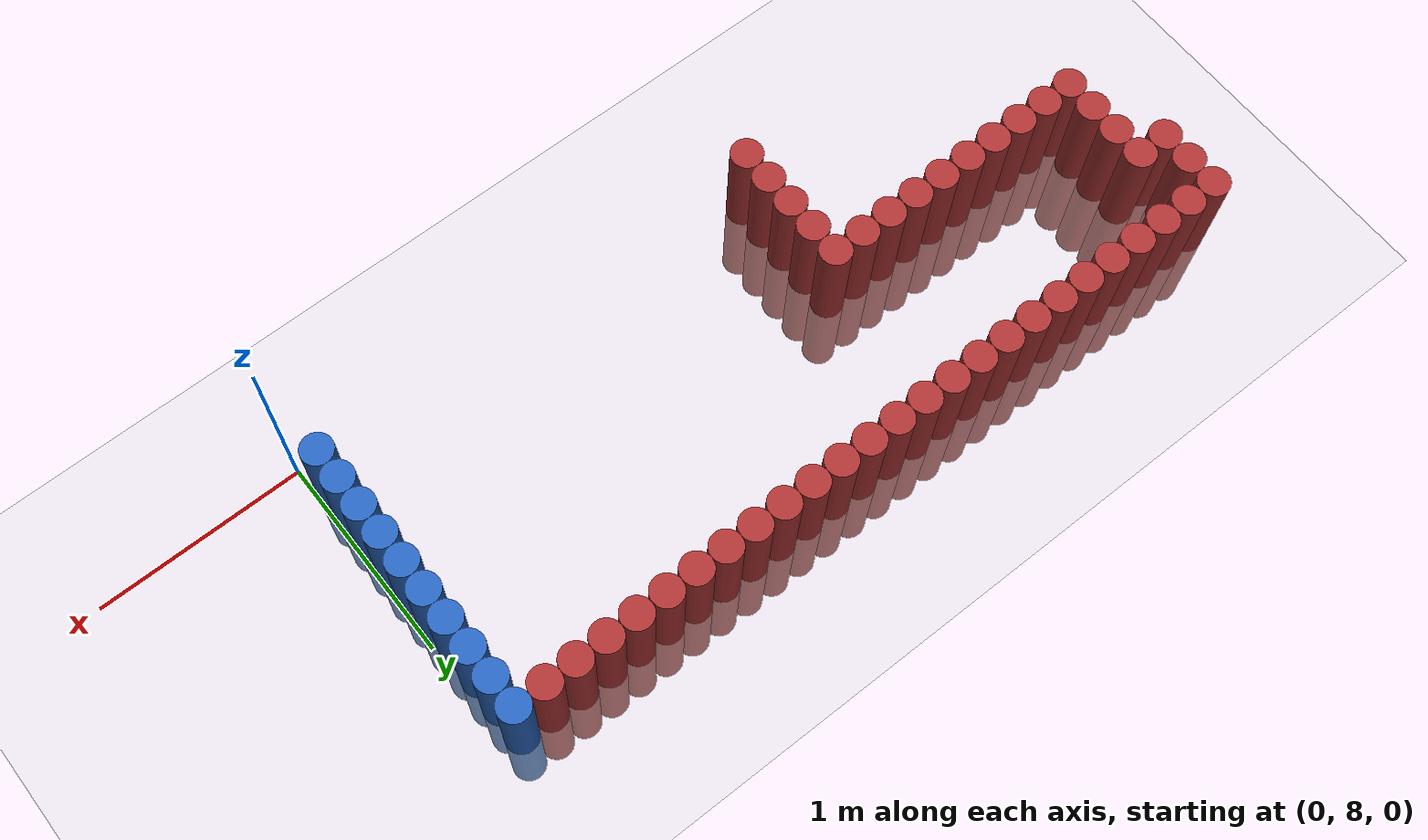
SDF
<sdf version="1.6">
 <world name="default">
  <model name="ground_plane">
   <static>1</static>
   <link name="link">
    <collision name="collision">
     <geometry><plane><normal>0 0 1</normal><size>100 100</size></plane></geometry>
     <surface><friction><ode><mu>100</mu><mu2>50</mu2></ode></friction></surface>
    </collision>
    <visual name="visual">
     <cast_shadows>0</cast_shadows>
     <geometry><plane><normal>0 0 1</normal><size>100 100</size></plane></geometry>
     <material>
      <script><uri>file://media/materials/scripts/gazebo.material</uri><name>Gazebo/Grey</name></script>
     </material>
    </visual>
   </link>
  </model>
  <model name="unit_cylinder_260">
   <static>1</static>
   <pose>-3.825000 9.225000 0.000000 0.000000 0.000000 0.000000</pose>
   <link name="link">
    <inertial>
     <mass>1</mass>
     <inertia><ixx>0.145833</ixx><ixy>0</ixy><ixz>0</ixz><iyy>0.145833</iyy><iyz>0</iyz><izz>0.125</izz></inertia>
    </inertial>
    <collision name="collision">
     <geometry><cylinder><radius>0.075000</radius><length>1</length></cylinder></geometry>
    </collision>
    <visual name="visual">
     <geometry><cylinder><radius>0.075000</radius><length>1</length></cylinder></geometry>
     <material>
      <ambient>0.648000 0.192000 0.192000 1</ambient>
      <diffuse>0.648000 0.192000 0.192000 1</diffuse>
     </material>
     <material>
      <script><name>Gazebo/Grey</name><uri>file://media/materials/scripts/gazebo.material</uri></script>
     </material>
    </visual>
   </link>
  </model>
  <model name="unit_cylinder_261">
   <static>1</static>
   <pose>-3.825000 9.375000 0.000000 0.000000 0.000000 0.000000</pose>
   <link name="link">
    <inertial>
     <mass>1</mass>
     <inertia><ixx>0.145833</ixx><ixy>0</ixy><ixz>0</ixz><iyy>0.145833</iyy><iyz>0</iyz><izz>0.125</izz></inertia>
    </inertial>
    <collision name="collision">
     <geometry><cylinder><radius>0.075000</radius><length>1</length></cylinder></geometry>
    </collision>
    <visual name="visual">
     <geometry><cylinder><radius>0.075000</radius><length>1</length></cylinder></geometry>
     <material>
      <ambient>0.648000 0.192000 0.192000 1</ambient>
      <diffuse>0.648000 0.192000 0.192000 1</diffuse>
     </material>
     <material>
      <script><name>Gazebo/Grey</name><uri>file://media/materials/scripts/gazebo.material</uri></script>
     </material>
    </visual>
   </link>
  </model>
  <model name="unit_cylinder_262">
   <static>1</static>
   <pose>-3.825000 9.525000 0.000000 0.000000 0.000000 0.000000</pose>
   <link name="link">
    <inertial>
     <mass>1</mass>
     <inertia><ixx>0.145833</ixx><ixy>0</ixy><ixz>0</ixz><iyy>0.145833</iyy><iyz>0</iyz><izz>0.125</izz></inertia>
    </inertial>
    <collision name="collision">
     <geometry><cylinder><radius>0.075000</radius><length>1</length></cylinder></geometry>
    </collision>
    <visual name="visual">
     <geometry><cylinder><radius>0.075000</radius><length>1</length></cylinder></geometry>
     <material>
      <ambient>0.648000 0.192000 0.192000 1</ambient>
      <diffuse>0.648000 0.192000 0.192000 1</diffuse>
     </material>
     <material>
      <script><name>Gazebo/Grey</name><uri>file://media/materials/scripts/gazebo.material</uri></script>
     </material>
    </visual>
   </link>
  </model>
  <model name="unit_cylinder_267">
   <static>1</static>
   <pose>-3.675000 8.775000 0.000000 0.000000 0.000000 0.000000</pose>
   <link name="link">
    <inertial>
     <mass>1</mass>
     <inertia><ixx>0.145833</ixx><ixy>0</ixy><ixz>0</ixz><iyy>0.145833</iyy><iyz>0</iyz><izz>0.125</izz></inertia>
    </inertial>
    <collision name="collision">
     <geometry><cylinder><radius>0.075000</radius><length>1</length></cylinder></geometry>
    </collision>
    <visual name="visual">
     <geometry><cylinder><radius>0.075000</radius><length>1</length></cylinder></geometry>
     <material>
      <ambient>0.648000 0.192000 0.192000 1</ambient>
      <diffuse>0.648000 0.192000 0.192000 1</diffuse>
     </material>
     <material>
      <script><name>Gazebo/Grey</name><uri>file://media/materials/scripts/gazebo.material</uri></script>
     </material>
    </visual>
   </link>
  </model>
  <model name="unit_cylinder_268">
   <static>1</static>
   <pose>-3.675000 8.925000 0.000000 0.000000 0.000000 0.000000</pose>
   <link name="link">
    <inertial>
     <mass>1</mass>
     <inertia><ixx>0.145833</ixx><ixy>0</ixy><ixz>0</ixz><iyy>0.145833</iyy><iyz>0</iyz><izz>0.125</izz></inertia>
    </inertial>
    <collision name="collision">
     <geometry><cylinder><radius>0.075000</radius><length>1</length></cylinder></geometry>
    </collision>
    <visual name="visual">
     <geometry><cylinder><radius>0.075000</radius><length>1</length></cylinder></geometry>
     <material>
      <ambient>0.648000 0.192000 0.192000 1</ambient>
      <diffuse>0.648000 0.192000 0.192000 1</diffuse>
     </material>
     <material>
      <script><name>Gazebo/Grey</name><uri>file://media/materials/scripts/gazebo.material</uri></script>
     </material>
    </visual>
   </link>
  </model>
  <model name="unit_cylinder_269">
   <static>1</static>
   <pose>-3.675000 9.075000 0.000000 0.000000 0.000000 0.000000</pose>
   <link name="link">
    <inertial>
     <mass>1</mass>
     <inertia><ixx>0.145833</ixx><ixy>0</ixy><ixz>0</ixz><iyy>0.145833</iyy><iyz>0</iyz><izz>0.125</izz></inertia>
    </inertial>
    <collision name="collision">
     <geometry><cylinder><radius>0.075000</radius><length>1</length></cylinder></geometry>
    </collision>
    <visual name="visual">
     <geometry><cylinder><radius>0.075000</radius><length>1</length></cylinder></geometry>
     <material>
      <ambient>0.648000 0.192000 0.192000 1</ambient>
      <diffuse>0.648000 0.192000 0.192000 1</diffuse>
     </material>
     <material>
      <script><name>Gazebo/Grey</name><uri>file://media/materials/scripts/gazebo.material</uri></script>
     </material>
    </visual>
   </link>
  </model>
  <model name="unit_cylinder_270">
   <static>1</static>
   <pose>-3.675000 9.225000 0.000000 0.000000 0.000000 0.000000</pose>
   <link name="link">
    <inertial>
     <mass>1</mass>
     <inertia><ixx>0.145833</ixx><ixy>0</ixy><ixz>0</ixz><iyy>0.145833</iyy><iyz>0</iyz><izz>0.125</izz></inertia>
    </inertial>
    <collision name="collision">
     <geometry><cylinder><radius>0.075000</radius><length>1</length></cylinder></geometry>
    </collision>
    <visual name="visual">
     <geometry><cylinder><radius>0.075000</radius><length>1</length></cylinder></geometry>
     <material>
      <ambient>0.648000 0.192000 0.192000 1</ambient>
      <diffuse>0.648000 0.192000 0.192000 1</diffuse>
     </material>
     <material>
      <script><name>Gazebo/Grey</name><uri>file://media/materials/scripts/gazebo.material</uri></script>
     </material>
    </visual>
   </link>
  </model>
  <model name="unit_cylinder_271">
   <static>1</static>
   <pose>-3.675000 9.525000 0.000000 0.000000 0.000000 0.000000</pose>
   <link name="link">
    <inertial>
     <mass>1</mass>
     <inertia><ixx>0.145833</ixx><ixy>0</ixy><ixz>0</ixz><iyy>0.145833</iyy><iyz>0</iyz><izz>0.125</izz></inertia>
    </inertial>
    <collision name="collision">
     <geometry><cylinder><radius>0.075000</radius><length>1</length></cylinder></geometry>
    </collision>
    <visual name="visual">
     <geometry><cylinder><radius>0.075000</radius><length>1</length></cylinder></geometry>
     <material>
      <ambient>0.648000 0.192000 0.192000 1</ambient>
      <diffuse>0.648000 0.192000 0.192000 1</diffuse>
     </material>
     <material>
      <script><name>Gazebo/Grey</name><uri>file://media/materials/scripts/gazebo.material</uri></script>
     </material>
    </visual>
   </link>
  </model>
  <model name="unit_cylinder_274">
   <static>1</static>
   <pose>-3.525000 8.775000 0.000000 0.000000 0.000000 0.000000</pose>
   <link name="link">
    <inertial>
     <mass>1</mass>
     <inertia><ixx>0.145833</ixx><ixy>0</ixy><ixz>0</ixz><iyy>0.145833</iyy><iyz>0</iyz><izz>0.125</izz></inertia>
    </inertial>
    <collision name="collision">
     <geometry><cylinder><radius>0.075000</radius><length>1</length></cylinder></geometry>
    </collision>
    <visual name="visual">
     <geometry><cylinder><radius>0.075000</radius><length>1</length></cylinder></geometry>
     <material>
      <ambient>0.648000 0.192000 0.192000 1</ambient>
      <diffuse>0.648000 0.192000 0.192000 1</diffuse>
     </material>
     <material>
      <script><name>Gazebo/Grey</name><uri>file://media/materials/scripts/gazebo.material</uri></script>
     </material>
    </visual>
   </link>
  </model>
  <model name="unit_cylinder_275">
   <static>1</static>
   <pose>-3.525000 9.525000 0.000000 0.000000 0.000000 0.000000</pose>
   <link name="link">
    <inertial>
     <mass>1</mass>
     <inertia><ixx>0.145833</ixx><ixy>0</ixy><ixz>0</ixz><iyy>0.145833</iyy><iyz>0</iyz><izz>0.125</izz></inertia>
    </inertial>
    <collision name="collision">
     <geometry><cylinder><radius>0.075000</radius><length>1</length></cylinder></geometry>
    </collision>
    <visual name="visual">
     <geometry><cylinder><radius>0.075000</radius><length>1</length></cylinder></geometry>
     <material>
      <ambient>0.648000 0.192000 0.192000 1</ambient>
      <diffuse>0.648000 0.192000 0.192000 1</diffuse>
     </material>
     <material>
      <script><name>Gazebo/Grey</name><uri>file://media/materials/scripts/gazebo.material</uri></script>
     </material>
    </visual>
   </link>
  </model>
  <model name="unit_cylinder_278">
   <static>1</static>
   <pose>-3.375000 8.775000 0.000000 0.000000 0.000000 0.000000</pose>
   <link name="link">
    <inertial>
     <mass>1</mass>
     <inertia><ixx>0.145833</ixx><ixy>0</ixy><ixz>0</ixz><iyy>0.145833</iyy><iyz>0</iyz><izz>0.125</izz></inertia>
    </inertial>
    <collision name="collision">
     <geometry><cylinder><radius>0.075000</radius><length>1</length></cylinder></geometry>
    </collision>
    <visual name="visual">
     <geometry><cylinder><radius>0.075000</radius><length>1</length></cylinder></geometry>
     <material>
      <ambient>0.648000 0.192000 0.192000 1</ambient>
      <diffuse>0.648000 0.192000 0.192000 1</diffuse>
     </material>
     <material>
      <script><name>Gazebo/Grey</name><uri>file://media/materials/scripts/gazebo.material</uri></script>
     </material>
    </visual>
   </link>
  </model>
  <model name="unit_cylinder_279">
   <static>1</static>
   <pose>-3.375000 9.525000 0.000000 0.000000 0.000000 0.000000</pose>
   <link name="link">
    <inertial>
     <mass>1</mass>
     <inertia><ixx>0.145833</ixx><ixy>0</ixy><ixz>0</ixz><iyy>0.145833</iyy><iyz>0</iyz><izz>0.125</izz></inertia>
    </inertial>
    <collision name="collision">
     <geometry><cylinder><radius>0.075000</radius><length>1</length></cylinder></geometry>
    </collision>
    <visual name="visual">
     <geometry><cylinder><radius>0.075000</radius><length>1</length></cylinder></geometry>
     <material>
      <ambient>0.648000 0.192000 0.192000 1</ambient>
      <diffuse>0.648000 0.192000 0.192000 1</diffuse>
     </material>
     <material>
      <script><name>Gazebo/Grey</name><uri>file://media/materials/scripts/gazebo.material</uri></script>
     </material>
    </visual>
   </link>
  </model>
  <model name="unit_cylinder_280">
   <static>1</static>
   <pose>-3.225000 8.775000 0.000000 0.000000 0.000000 0.000000</pose>
   <link name="link">
    <inertial>
     <mass>1</mass>
     <inertia><ixx>0.145833</ixx><ixy>0</ixy><ixz>0</ixz><iyy>0.145833</iyy><iyz>0</iyz><izz>0.125</izz></inertia>
    </inertial>
    <collision name="collision">
     <geometry><cylinder><radius>0.075000</radius><length>1</length></cylinder></geometry>
    </collision>
    <visual name="visual">
     <geometry><cylinder><radius>0.075000</radius><length>1</length></cylinder></geometry>
     <material>
      <ambient>0.648000 0.192000 0.192000 1</ambient>
      <diffuse>0.648000 0.192000 0.192000 1</diffuse>
     </material>
     <material>
      <script><name>Gazebo/Grey</name><uri>file://media/materials/scripts/gazebo.material</uri></script>
     </material>
    </visual>
   </link>
  </model>
  <model name="unit_cylinder_281">
   <static>1</static>
   <pose>-3.225000 9.525000 0.000000 0.000000 0.000000 0.000000</pose>
   <link name="link">
    <inertial>
     <mass>1</mass>
     <inertia><ixx>0.145833</ixx><ixy>0</ixy><ixz>0</ixz><iyy>0.145833</iyy><iyz>0</iyz><izz>0.125</izz></inertia>
    </inertial>
    <collision name="collision">
     <geometry><cylinder><radius>0.075000</radius><length>1</length></cylinder></geometry>
    </collision>
    <visual name="visual">
     <geometry><cylinder><radius>0.075000</radius><length>1</length></cylinder></geometry>
     <material>
      <ambient>0.648000 0.192000 0.192000 1</ambient>
      <diffuse>0.648000 0.192000 0.192000 1</diffuse>
     </material>
     <material>
      <script><name>Gazebo/Grey</name><uri>file://media/materials/scripts/gazebo.material</uri></script>
     </material>
    </visual>
   </link>
  </model>
  <model name="unit_cylinder_282">
   <static>1</static>
   <pose>-3.075000 8.775000 0.000000 0.000000 0.000000 0.000000</pose>
   <link name="link">
    <inertial>
     <mass>1</mass>
     <inertia><ixx>0.145833</ixx><ixy>0</ixy><ixz>0</ixz><iyy>0.145833</iyy><iyz>0</iyz><izz>0.125</izz></inertia>
    </inertial>
    <collision name="collision">
     <geometry><cylinder><radius>0.075000</radius><length>1</length></cylinder></geometry>
    </collision>
    <visual name="visual">
     <geometry><cylinder><radius>0.075000</radius><length>1</length></cylinder></geometry>
     <material>
      <ambient>0.648000 0.192000 0.192000 1</ambient>
      <diffuse>0.648000 0.192000 0.192000 1</diffuse>
     </material>
     <material>
      <script><name>Gazebo/Grey</name><uri>file://media/materials/scripts/gazebo.material</uri></script>
     </material>
    </visual>
   </link>
  </model>
  <model name="unit_cylinder_283">
   <static>1</static>
   <pose>-3.075000 9.525000 0.000000 0.000000 0.000000 0.000000</pose>
   <link name="link">
    <inertial>
     <mass>1</mass>
     <inertia><ixx>0.145833</ixx><ixy>0</ixy><ixz>0</ixz><iyy>0.145833</iyy><iyz>0</iyz><izz>0.125</izz></inertia>
    </inertial>
    <collision name="collision">
     <geometry><cylinder><radius>0.075000</radius><length>1</length></cylinder></geometry>
    </collision>
    <visual name="visual">
     <geometry><cylinder><radius>0.075000</radius><length>1</length></cylinder></geometry>
     <material>
      <ambient>0.648000 0.192000 0.192000 1</ambient>
      <diffuse>0.648000 0.192000 0.192000 1</diffuse>
     </material>
     <material>
      <script><name>Gazebo/Grey</name><uri>file://media/materials/scripts/gazebo.material</uri></script>
     </material>
    </visual>
   </link>
  </model>
  <model name="unit_cylinder_284">
   <static>1</static>
   <pose>-2.925000 8.775000 0.000000 0.000000 0.000000 0.000000</pose>
   <link name="link">
    <inertial>
     <mass>1</mass>
     <inertia><ixx>0.145833</ixx><ixy>0</ixy><ixz>0</ixz><iyy>0.145833</iyy><iyz>0</iyz><izz>0.125</izz></inertia>
    </inertial>
    <collision name="collision">
     <geometry><cylinder><radius>0.075000</radius><length>1</length></cylinder></geometry>
    </collision>
    <visual name="visual">
     <geometry><cylinder><radius>0.075000</radius><length>1</length></cylinder></geometry>
     <material>
      <ambient>0.648000 0.192000 0.192000 1</ambient>
      <diffuse>0.648000 0.192000 0.192000 1</diffuse>
     </material>
     <material>
      <script><name>Gazebo/Grey</name><uri>file://media/materials/scripts/gazebo.material</uri></script>
     </material>
    </visual>
   </link>
  </model>
  <model name="unit_cylinder_285">
   <static>1</static>
   <pose>-2.925000 9.525000 0.000000 0.000000 0.000000 0.000000</pose>
   <link name="link">
    <inertial>
     <mass>1</mass>
     <inertia><ixx>0.145833</ixx><ixy>0</ixy><ixz>0</ixz><iyy>0.145833</iyy><iyz>0</iyz><izz>0.125</izz></inertia>
    </inertial>
    <collision name="collision">
     <geometry><cylinder><radius>0.075000</radius><length>1</length></cylinder></geometry>
    </collision>
    <visual name="visual">
     <geometry><cylinder><radius>0.075000</radius><length>1</length></cylinder></geometry>
     <material>
      <ambient>0.648000 0.192000 0.192000 1</ambient>
      <diffuse>0.648000 0.192000 0.192000 1</diffuse>
     </material>
     <material>
      <script><name>Gazebo/Grey</name><uri>file://media/materials/scripts/gazebo.material</uri></script>
     </material>
    </visual>
   </link>
  </model>
  <model name="unit_cylinder_286">
   <static>1</static>
   <pose>-2.775000 8.775000 0.000000 0.000000 0.000000 0.000000</pose>
   <link name="link">
    <inertial>
     <mass>1</mass>
     <inertia><ixx>0.145833</ixx><ixy>0</ixy><ixz>0</ixz><iyy>0.145833</iyy><iyz>0</iyz><izz>0.125</izz></inertia>
    </inertial>
    <collision name="collision">
     <geometry><cylinder><radius>0.075000</radius><length>1</length></cylinder></geometry>
    </collision>
    <visual name="visual">
     <geometry><cylinder><radius>0.075000</radius><length>1</length></cylinder></geometry>
     <material>
      <ambient>0.648000 0.192000 0.192000 1</ambient>
      <diffuse>0.648000 0.192000 0.192000 1</diffuse>
     </material>
     <material>
      <script><name>Gazebo/Grey</name><uri>file://media/materials/scripts/gazebo.material</uri></script>
     </material>
    </visual>
   </link>
  </model>
  <model name="unit_cylinder_287">
   <static>1</static>
   <pose>-2.775000 9.525000 0.000000 0.000000 0.000000 0.000000</pose>
   <link name="link">
    <inertial>
     <mass>1</mass>
     <inertia><ixx>0.145833</ixx><ixy>0</ixy><ixz>0</ixz><iyy>0.145833</iyy><iyz>0</iyz><izz>0.125</izz></inertia>
    </inertial>
    <collision name="collision">
     <geometry><cylinder><radius>0.075000</radius><length>1</length></cylinder></geometry>
    </collision>
    <visual name="visual">
     <geometry><cylinder><radius>0.075000</radius><length>1</length></cylinder></geometry>
     <material>
      <ambient>0.648000 0.192000 0.192000 1</ambient>
      <diffuse>0.648000 0.192000 0.192000 1</diffuse>
     </material>
     <material>
      <script><name>Gazebo/Grey</name><uri>file://media/materials/scripts/gazebo.material</uri></script>
     </material>
    </visual>
   </link>
  </model>
  <model name="unit_cylinder_288">
   <static>1</static>
   <pose>-2.625000 8.775000 0.000000 0.000000 0.000000 0.000000</pose>
   <link name="link">
    <inertial>
     <mass>1</mass>
     <inertia><ixx>0.145833</ixx><ixy>0</ixy><ixz>0</ixz><iyy>0.145833</iyy><iyz>0</iyz><izz>0.125</izz></inertia>
    </inertial>
    <collision name="collision">
     <geometry><cylinder><radius>0.075000</radius><length>1</length></cylinder></geometry>
    </collision>
    <visual name="visual">
     <geometry><cylinder><radius>0.075000</radius><length>1</length></cylinder></geometry>
     <material>
      <ambient>0.648000 0.192000 0.192000 1</ambient>
      <diffuse>0.648000 0.192000 0.192000 1</diffuse>
     </material>
     <material>
      <script><name>Gazebo/Grey</name><uri>file://media/materials/scripts/gazebo.material</uri></script>
     </material>
    </visual>
   </link>
  </model>
  <model name="unit_cylinder_289">
   <static>1</static>
   <pose>-2.625000 9.525000 0.000000 0.000000 0.000000 0.000000</pose>
   <link name="link">
    <inertial>
     <mass>1</mass>
     <inertia><ixx>0.145833</ixx><ixy>0</ixy><ixz>0</ixz><iyy>0.145833</iyy><iyz>0</iyz><izz>0.125</izz></inertia>
    </inertial>
    <collision name="collision">
     <geometry><cylinder><radius>0.075000</radius><length>1</length></cylinder></geometry>
    </collision>
    <visual name="visual">
     <geometry><cylinder><radius>0.075000</radius><length>1</length></cylinder></geometry>
     <material>
      <ambient>0.648000 0.192000 0.192000 1</ambient>
      <diffuse>0.648000 0.192000 0.192000 1</diffuse>
     </material>
     <material>
      <script><name>Gazebo/Grey</name><uri>file://media/materials/scripts/gazebo.material</uri></script>
     </material>
    </visual>
   </link>
  </model>
  <model name="unit_cylinder_290">
   <static>1</static>
   <pose>-2.475000 8.775000 0.000000 0.000000 0.000000 0.000000</pose>
   <link name="link">
    <inertial>
     <mass>1</mass>
     <inertia><ixx>0.145833</ixx><ixy>0</ixy><ixz>0</ixz><iyy>0.145833</iyy><iyz>0</iyz><izz>0.125</izz></inertia>
    </inertial>
    <collision name="collision">
     <geometry><cylinder><radius>0.075000</radius><length>1</length></cylinder></geometry>
    </collision>
    <visual name="visual">
     <geometry><cylinder><radius>0.075000</radius><length>1</length></cylinder></geometry>
     <material>
      <ambient>0.648000 0.192000 0.192000 1</ambient>
      <diffuse>0.648000 0.192000 0.192000 1</diffuse>
     </material>
     <material>
      <script><name>Gazebo/Grey</name><uri>file://media/materials/scripts/gazebo.material</uri></script>
     </material>
    </visual>
   </link>
  </model>
  <model name="unit_cylinder_291">
   <static>1</static>
   <pose>-2.475000 9.525000 0.000000 0.000000 0.000000 0.000000</pose>
   <link name="link">
    <inertial>
     <mass>1</mass>
     <inertia><ixx>0.145833</ixx><ixy>0</ixy><ixz>0</ixz><iyy>0.145833</iyy><iyz>0</iyz><izz>0.125</izz></inertia>
    </inertial>
    <collision name="collision">
     <geometry><cylinder><radius>0.075000</radius><length>1</length></cylinder></geometry>
    </collision>
    <visual name="visual">
     <geometry><cylinder><radius>0.075000</radius><length>1</length></cylinder></geometry>
     <material>
      <ambient>0.648000 0.192000 0.192000 1</ambient>
      <diffuse>0.648000 0.192000 0.192000 1</diffuse>
     </material>
     <material>
      <script><name>Gazebo/Grey</name><uri>file://media/materials/scripts/gazebo.material</uri></script>
     </material>
    </visual>
   </link>
  </model>
  <model name="unit_cylinder_294">
   <static>1</static>
   <pose>-2.325000 8.175000 0.000000 0.000000 0.000000 0.000000</pose>
   <link name="link">
    <inertial>
     <mass>1</mass>
     <inertia><ixx>0.145833</ixx><ixy>0</ixy><ixz>0</ixz><iyy>0.145833</iyy><iyz>0</iyz><izz>0.125</izz></inertia>
    </inertial>
    <collision name="collision">
     <geometry><cylinder><radius>0.075000</radius><length>1</length></cylinder></geometry>
    </collision>
    <visual name="visual">
     <geometry><cylinder><radius>0.075000</radius><length>1</length></cylinder></geometry>
     <material>
      <ambient>0.648000 0.192000 0.192000 1</ambient>
      <diffuse>0.648000 0.192000 0.192000 1</diffuse>
     </material>
     <material>
      <script><name>Gazebo/Grey</name><uri>file://media/materials/scripts/gazebo.material</uri></script>
     </material>
    </visual>
   </link>
  </model>
  <model name="unit_cylinder_295">
   <static>1</static>
   <pose>-2.325000 8.325000 0.000000 0.000000 0.000000 0.000000</pose>
   <link name="link">
    <inertial>
     <mass>1</mass>
     <inertia><ixx>0.145833</ixx><ixy>0</ixy><ixz>0</ixz><iyy>0.145833</iyy><iyz>0</iyz><izz>0.125</izz></inertia>
    </inertial>
    <collision name="collision">
     <geometry><cylinder><radius>0.075000</radius><length>1</length></cylinder></geometry>
    </collision>
    <visual name="visual">
     <geometry><cylinder><radius>0.075000</radius><length>1</length></cylinder></geometry>
     <material>
      <ambient>0.648000 0.192000 0.192000 1</ambient>
      <diffuse>0.648000 0.192000 0.192000 1</diffuse>
     </material>
     <material>
      <script><name>Gazebo/Grey</name><uri>file://media/materials/scripts/gazebo.material</uri></script>
     </material>
    </visual>
   </link>
  </model>
  <model name="unit_cylinder_296">
   <static>1</static>
   <pose>-2.325000 8.475000 0.000000 0.000000 0.000000 0.000000</pose>
   <link name="link">
    <inertial>
     <mass>1</mass>
     <inertia><ixx>0.145833</ixx><ixy>0</ixy><ixz>0</ixz><iyy>0.145833</iyy><iyz>0</iyz><izz>0.125</izz></inertia>
    </inertial>
    <collision name="collision">
     <geometry><cylinder><radius>0.075000</radius><length>1</length></cylinder></geometry>
    </collision>
    <visual name="visual">
     <geometry><cylinder><radius>0.075000</radius><length>1</length></cylinder></geometry>
     <material>
      <ambient>0.648000 0.192000 0.192000 1</ambient>
      <diffuse>0.648000 0.192000 0.192000 1</diffuse>
     </material>
     <material>
      <script><name>Gazebo/Grey</name><uri>file://media/materials/scripts/gazebo.material</uri></script>
     </material>
    </visual>
   </link>
  </model>
  <model name="unit_cylinder_297">
   <static>1</static>
   <pose>-2.325000 8.625000 0.000000 0.000000 0.000000 0.000000</pose>
   <link name="link">
    <inertial>
     <mass>1</mass>
     <inertia><ixx>0.145833</ixx><ixy>0</ixy><ixz>0</ixz><iyy>0.145833</iyy><iyz>0</iyz><izz>0.125</izz></inertia>
    </inertial>
    <collision name="collision">
     <geometry><cylinder><radius>0.075000</radius><length>1</length></cylinder></geometry>
    </collision>
    <visual name="visual">
     <geometry><cylinder><radius>0.075000</radius><length>1</length></cylinder></geometry>
     <material>
      <ambient>0.648000 0.192000 0.192000 1</ambient>
      <diffuse>0.648000 0.192000 0.192000 1</diffuse>
     </material>
     <material>
      <script><name>Gazebo/Grey</name><uri>file://media/materials/scripts/gazebo.material</uri></script>
     </material>
    </visual>
   </link>
  </model>
  <model name="unit_cylinder_298">
   <static>1</static>
   <pose>-2.325000 8.775000 0.000000 0.000000 0.000000 0.000000</pose>
   <link name="link">
    <inertial>
     <mass>1</mass>
     <inertia><ixx>0.145833</ixx><ixy>0</ixy><ixz>0</ixz><iyy>0.145833</iyy><iyz>0</iyz><izz>0.125</izz></inertia>
    </inertial>
    <collision name="collision">
     <geometry><cylinder><radius>0.075000</radius><length>1</length></cylinder></geometry>
    </collision>
    <visual name="visual">
     <geometry><cylinder><radius>0.075000</radius><length>1</length></cylinder></geometry>
     <material>
      <ambient>0.648000 0.192000 0.192000 1</ambient>
      <diffuse>0.648000 0.192000 0.192000 1</diffuse>
     </material>
     <material>
      <script><name>Gazebo/Grey</name><uri>file://media/materials/scripts/gazebo.material</uri></script>
     </material>
    </visual>
   </link>
  </model>
  <model name="unit_cylinder_299">
   <static>1</static>
   <pose>-2.325000 9.525000 0.000000 0.000000 0.000000 0.000000</pose>
   <link name="link">
    <inertial>
     <mass>1</mass>
     <inertia><ixx>0.145833</ixx><ixy>0</ixy><ixz>0</ixz><iyy>0.145833</iyy><iyz>0</iyz><izz>0.125</izz></inertia>
    </inertial>
    <collision name="collision">
     <geometry><cylinder><radius>0.075000</radius><length>1</length></cylinder></geometry>
    </collision>
    <visual name="visual">
     <geometry><cylinder><radius>0.075000</radius><length>1</length></cylinder></geometry>
     <material>
      <ambient>0.648000 0.192000 0.192000 1</ambient>
      <diffuse>0.648000 0.192000 0.192000 1</diffuse>
     </material>
     <material>
      <script><name>Gazebo/Grey</name><uri>file://media/materials/scripts/gazebo.material</uri></script>
     </material>
    </visual>
   </link>
  </model>
  <model name="unit_cylinder_302">
   <static>1</static>
   <pose>-2.175000 9.525000 0.000000 0.000000 0.000000 0.000000</pose>
   <link name="link">
    <inertial>
     <mass>1</mass>
     <inertia><ixx>0.145833</ixx><ixy>0</ixy><ixz>0</ixz><iyy>0.145833</iyy><iyz>0</iyz><izz>0.125</izz></inertia>
    </inertial>
    <collision name="collision">
     <geometry><cylinder><radius>0.075000</radius><length>1</length></cylinder></geometry>
    </collision>
    <visual name="visual">
     <geometry><cylinder><radius>0.075000</radius><length>1</length></cylinder></geometry>
     <material>
      <ambient>0.648000 0.192000 0.192000 1</ambient>
      <diffuse>0.648000 0.192000 0.192000 1</diffuse>
     </material>
     <material>
      <script><name>Gazebo/Grey</name><uri>file://media/materials/scripts/gazebo.material</uri></script>
     </material>
    </visual>
   </link>
  </model>
  <model name="unit_cylinder_323">
   <static>1</static>
   <pose>-2.025000 9.525000 0.000000 0.000000 0.000000 0.000000</pose>
   <link name="link">
    <inertial>
     <mass>1</mass>
     <inertia><ixx>0.145833</ixx><ixy>0</ixy><ixz>0</ixz><iyy>0.145833</iyy><iyz>0</iyz><izz>0.125</izz></inertia>
    </inertial>
    <collision name="collision">
     <geometry><cylinder><radius>0.075000</radius><length>1</length></cylinder></geometry>
    </collision>
    <visual name="visual">
     <geometry><cylinder><radius>0.075000</radius><length>1</length></cylinder></geometry>
     <material>
      <ambient>0.648000 0.192000 0.192000 1</ambient>
      <diffuse>0.648000 0.192000 0.192000 1</diffuse>
     </material>
     <material>
      <script><name>Gazebo/Grey</name><uri>file://media/materials/scripts/gazebo.material</uri></script>
     </material>
    </visual>
   </link>
  </model>
  <model name="unit_cylinder_325">
   <static>1</static>
   <pose>-1.875000 9.525000 0.000000 0.000000 0.000000 0.000000</pose>
   <link name="link">
    <inertial>
     <mass>1</mass>
     <inertia><ixx>0.145833</ixx><ixy>0</ixy><ixz>0</ixz><iyy>0.145833</iyy><iyz>0</iyz><izz>0.125</izz></inertia>
    </inertial>
    <collision name="collision">
     <geometry><cylinder><radius>0.075000</radius><length>1</length></cylinder></geometry>
    </collision>
    <visual name="visual">
     <geometry><cylinder><radius>0.075000</radius><length>1</length></cylinder></geometry>
     <material>
      <ambient>0.648000 0.192000 0.192000 1</ambient>
      <diffuse>0.648000 0.192000 0.192000 1</diffuse>
     </material>
     <material>
      <script><name>Gazebo/Grey</name><uri>file://media/materials/scripts/gazebo.material</uri></script>
     </material>
    </visual>
   </link>
  </model>
  <model name="unit_cylinder_327">
   <static>1</static>
   <pose>-1.725000 9.525000 0.000000 0.000000 0.000000 0.000000</pose>
   <link name="link">
    <inertial>
     <mass>1</mass>
     <inertia><ixx>0.145833</ixx><ixy>0</ixy><ixz>0</ixz><iyy>0.145833</iyy><iyz>0</iyz><izz>0.125</izz></inertia>
    </inertial>
    <collision name="collision">
     <geometry><cylinder><radius>0.075000</radius><length>1</length></cylinder></geometry>
    </collision>
    <visual name="visual">
     <geometry><cylinder><radius>0.075000</radius><length>1</length></cylinder></geometry>
     <material>
      <ambient>0.648000 0.192000 0.192000 1</ambient>
      <diffuse>0.648000 0.192000 0.192000 1</diffuse>
     </material>
     <material>
      <script><name>Gazebo/Grey</name><uri>file://media/materials/scripts/gazebo.material</uri></script>
     </material>
    </visual>
   </link>
  </model>
  <model name="unit_cylinder_329">
   <static>1</static>
   <pose>-1.575000 9.525000 0.000000 0.000000 0.000000 0.000000</pose>
   <link name="link">
    <inertial>
     <mass>1</mass>
     <inertia><ixx>0.145833</ixx><ixy>0</ixy><ixz>0</ixz><iyy>0.145833</iyy><iyz>0</iyz><izz>0.125</izz></inertia>
    </inertial>
    <collision name="collision">
     <geometry><cylinder><radius>0.075000</radius><length>1</length></cylinder></geometry>
    </collision>
    <visual name="visual">
     <geometry><cylinder><radius>0.075000</radius><length>1</length></cylinder></geometry>
     <material>
      <ambient>0.648000 0.192000 0.192000 1</ambient>
      <diffuse>0.648000 0.192000 0.192000 1</diffuse>
     </material>
     <material>
      <script><name>Gazebo/Grey</name><uri>file://media/materials/scripts/gazebo.material</uri></script>
     </material>
    </visual>
   </link>
  </model>
  <model name="unit_cylinder_331">
   <static>1</static>
   <pose>-1.425000 9.525000 0.000000 0.000000 0.000000 0.000000</pose>
   <link name="link">
    <inertial>
     <mass>1</mass>
     <inertia><ixx>0.145833</ixx><ixy>0</ixy><ixz>0</ixz><iyy>0.145833</iyy><iyz>0</iyz><izz>0.125</izz></inertia>
    </inertial>
    <collision name="collision">
     <geometry><cylinder><radius>0.075000</radius><length>1</length></cylinder></geometry>
    </collision>
    <visual name="visual">
     <geometry><cylinder><radius>0.075000</radius><length>1</length></cylinder></geometry>
     <material>
      <ambient>0.648000 0.192000 0.192000 1</ambient>
      <diffuse>0.648000 0.192000 0.192000 1</diffuse>
     </material>
     <material>
      <script><name>Gazebo/Grey</name><uri>file://media/materials/scripts/gazebo.material</uri></script>
     </material>
    </visual>
   </link>
  </model>
  <model name="unit_cylinder_333">
   <static>1</static>
   <pose>-1.275000 9.525000 0.000000 0.000000 0.000000 0.000000</pose>
   <link name="link">
    <inertial>
     <mass>1</mass>
     <inertia><ixx>0.145833</ixx><ixy>0</ixy><ixz>0</ixz><iyy>0.145833</iyy><iyz>0</iyz><izz>0.125</izz></inertia>
    </inertial>
    <collision name="collision">
     <geometry><cylinder><radius>0.075000</radius><length>1</length></cylinder></geometry>
    </collision>
    <visual name="visual">
     <geometry><cylinder><radius>0.075000</radius><length>1</length></cylinder></geometry>
     <material>
      <ambient>0.648000 0.192000 0.192000 1</ambient>
      <diffuse>0.648000 0.192000 0.192000 1</diffuse>
     </material>
     <material>
      <script><name>Gazebo/Grey</name><uri>file://media/materials/scripts/gazebo.material</uri></script>
     </material>
    </visual>
   </link>
  </model>
  <model name="unit_cylinder_335">
   <static>1</static>
   <pose>-1.125000 9.525000 0.000000 0.000000 0.000000 0.000000</pose>
   <link name="link">
    <inertial>
     <mass>1</mass>
     <inertia><ixx>0.145833</ixx><ixy>0</ixy><ixz>0</ixz><iyy>0.145833</iyy><iyz>0</iyz><izz>0.125</izz></inertia>
    </inertial>
    <collision name="collision">
     <geometry><cylinder><radius>0.075000</radius><length>1</length></cylinder></geometry>
    </collision>
    <visual name="visual">
     <geometry><cylinder><radius>0.075000</radius><length>1</length></cylinder></geometry>
     <material>
      <ambient>0.648000 0.192000 0.192000 1</ambient>
      <diffuse>0.648000 0.192000 0.192000 1</diffuse>
     </material>
     <material>
      <script><name>Gazebo/Grey</name><uri>file://media/materials/scripts/gazebo.material</uri></script>
     </material>
    </visual>
   </link>
  </model>
  <model name="unit_cylinder_337">
   <static>1</static>
   <pose>-0.975000 9.525000 0.000000 0.000000 0.000000 0.000000</pose>
   <link name="link">
    <inertial>
     <mass>1</mass>
     <inertia><ixx>0.145833</ixx><ixy>0</ixy><ixz>0</ixz><iyy>0.145833</iyy><iyz>0</iyz><izz>0.125</izz></inertia>
    </inertial>
    <collision name="collision">
     <geometry><cylinder><radius>0.075000</radius><length>1</length></cylinder></geometry>
    </collision>
    <visual name="visual">
     <geometry><cylinder><radius>0.075000</radius><length>1</length></cylinder></geometry>
     <material>
      <ambient>0.648000 0.192000 0.192000 1</ambient>
      <diffuse>0.648000 0.192000 0.192000 1</diffuse>
     </material>
     <material>
      <script><name>Gazebo/Grey</name><uri>file://media/materials/scripts/gazebo.material</uri></script>
     </material>
    </visual>
   </link>
  </model>
  <model name="unit_cylinder_339">
   <static>1</static>
   <pose>-0.825000 9.525000 0.000000 0.000000 0.000000 0.000000</pose>
   <link name="link">
    <inertial>
     <mass>1</mass>
     <inertia><ixx>0.145833</ixx><ixy>0</ixy><ixz>0</ixz><iyy>0.145833</iyy><iyz>0</iyz><izz>0.125</izz></inertia>
    </inertial>
    <collision name="collision">
     <geometry><cylinder><radius>0.075000</radius><length>1</length></cylinder></geometry>
    </collision>
    <visual name="visual">
     <geometry><cylinder><radius>0.075000</radius><length>1</length></cylinder></geometry>
     <material>
      <ambient>0.648000 0.192000 0.192000 1</ambient>
      <diffuse>0.648000 0.192000 0.192000 1</diffuse>
     </material>
     <material>
      <script><name>Gazebo/Grey</name><uri>file://media/materials/scripts/gazebo.material</uri></script>
     </material>
    </visual>
   </link>
  </model>
  <model name="unit_cylinder_341">
   <static>1</static>
   <pose>-0.675000 9.525000 0.000000 0.000000 0.000000 0.000000</pose>
   <link name="link">
    <inertial>
     <mass>1</mass>
     <inertia><ixx>0.145833</ixx><ixy>0</ixy><ixz>0</ixz><iyy>0.145833</iyy><iyz>0</iyz><izz>0.125</izz></inertia>
    </inertial>
    <collision name="collision">
     <geometry><cylinder><radius>0.075000</radius><length>1</length></cylinder></geometry>
    </collision>
    <visual name="visual">
     <geometry><cylinder><radius>0.075000</radius><length>1</length></cylinder></geometry>
     <material>
      <ambient>0.648000 0.192000 0.192000 1</ambient>
      <diffuse>0.648000 0.192000 0.192000 1</diffuse>
     </material>
     <material>
      <script><name>Gazebo/Grey</name><uri>file://media/materials/scripts/gazebo.material</uri></script>
     </material>
    </visual>
   </link>
  </model>
  <model name="unit_cylinder_343">
   <static>1</static>
   <pose>-0.525000 9.525000 0.000000 0.000000 0.000000 0.000000</pose>
   <link name="link">
    <inertial>
     <mass>1</mass>
     <inertia><ixx>0.145833</ixx><ixy>0</ixy><ixz>0</ixz><iyy>0.145833</iyy><iyz>0</iyz><izz>0.125</izz></inertia>
    </inertial>
    <collision name="collision">
     <geometry><cylinder><radius>0.075000</radius><length>1</length></cylinder></geometry>
    </collision>
    <visual name="visual">
     <geometry><cylinder><radius>0.075000</radius><length>1</length></cylinder></geometry>
     <material>
      <ambient>0.648000 0.192000 0.192000 1</ambient>
      <diffuse>0.648000 0.192000 0.192000 1</diffuse>
     </material>
     <material>
      <script><name>Gazebo/Grey</name><uri>file://media/materials/scripts/gazebo.material</uri></script>
     </material>
    </visual>
   </link>
  </model>
  <model name="unit_cylinder_345">
   <static>1</static>
   <pose>-0.375000 9.525000 0.000000 0.000000 0.000000 0.000000</pose>
   <link name="link">
    <inertial>
     <mass>1</mass>
     <inertia><ixx>0.145833</ixx><ixy>0</ixy><ixz>0</ixz><iyy>0.145833</iyy><iyz>0</iyz><izz>0.125</izz></inertia>
    </inertial>
    <collision name="collision">
     <geometry><cylinder><radius>0.075000</radius><length>1</length></cylinder></geometry>
    </collision>
    <visual name="visual">
     <geometry><cylinder><radius>0.075000</radius><length>1</length></cylinder></geometry>
     <material>
      <ambient>0.648000 0.192000 0.192000 1</ambient>
      <diffuse>0.648000 0.192000 0.192000 1</diffuse>
     </material>
     <material>
      <script><name>Gazebo/Grey</name><uri>file://media/materials/scripts/gazebo.material</uri></script>
     </material>
    </visual>
   </link>
  </model>
  <model name="unit_cylinder_347">
   <static>1</static>
   <pose>-0.225000 9.525000 0.000000 0.000000 0.000000 0.000000</pose>
   <link name="link">
    <inertial>
     <mass>1</mass>
     <inertia><ixx>0.145833</ixx><ixy>0</ixy><ixz>0</ixz><iyy>0.145833</iyy><iyz>0</iyz><izz>0.125</izz></inertia>
    </inertial>
    <collision name="collision">
     <geometry><cylinder><radius>0.075000</radius><length>1</length></cylinder></geometry>
    </collision>
    <visual name="visual">
     <geometry><cylinder><radius>0.075000</radius><length>1</length></cylinder></geometry>
     <material>
      <ambient>0.648000 0.192000 0.192000 1</ambient>
      <diffuse>0.648000 0.192000 0.192000 1</diffuse>
     </material>
     <material>
      <script><name>Gazebo/Grey</name><uri>file://media/materials/scripts/gazebo.material</uri></script>
     </material>
    </visual>
   </link>
  </model>
  <model name="unit_cylinder_368">
   <static>1</static>
   <pose>-0.075000 8.175000 0.000000 0.000000 0.000000 0.000000</pose>
   <link name="link">
    <inertial>
     <mass>1</mass>
     <inertia><ixx>0.145833</ixx><ixy>0</ixy><ixz>0</ixz><iyy>0.145833</iyy><iyz>0</iyz><izz>0.125</izz></inertia>
    </inertial>
    <collision name="collision">
     <geometry><cylinder><radius>0.075000</radius><length>1</length></cylinder></geometry>
    </collision>
    <visual name="visual">
     <geometry><cylinder><radius>0.075000</radius><length>1</length></cylinder></geometry>
     <material>
      <ambient>0.152000 0.379000 0.720000 1</ambient>
      <diffuse>0.152000 0.379000 0.720000 1</diffuse>
     </material>
     <material>
      <script><name>Gazebo/Grey</name><uri>file://media/materials/scripts/gazebo.material</uri></script>
     </material>
    </visual>
   </link>
  </model>
  <model name="unit_cylinder_369">
   <static>1</static>
   <pose>-0.075000 8.325000 0.000000 0.000000 0.000000 0.000000</pose>
   <link name="link">
    <inertial>
     <mass>1</mass>
     <inertia><ixx>0.145833</ixx><ixy>0</ixy><ixz>0</ixz><iyy>0.145833</iyy><iyz>0</iyz><izz>0.125</izz></inertia>
    </inertial>
    <collision name="collision">
     <geometry><cylinder><radius>0.075000</radius><length>1</length></cylinder></geometry>
    </collision>
    <visual name="visual">
     <geometry><cylinder><radius>0.075000</radius><length>1</length></cylinder></geometry>
     <material>
      <ambient>0.152000 0.379000 0.720000 1</ambient>
      <diffuse>0.152000 0.379000 0.720000 1</diffuse>
     </material>
     <material>
      <script><name>Gazebo/Grey</name><uri>file://media/materials/scripts/gazebo.material</uri></script>
     </material>
    </visual>
   </link>
  </model>
  <model name="unit_cylinder_370">
   <static>1</static>
   <pose>-0.075000 8.475000 0.000000 0.000000 0.000000 0.000000</pose>
   <link name="link">
    <inertial>
     <mass>1</mass>
     <inertia><ixx>0.145833</ixx><ixy>0</ixy><ixz>0</ixz><iyy>0.145833</iyy><iyz>0</iyz><izz>0.125</izz></inertia>
    </inertial>
    <collision name="collision">
     <geometry><cylinder><radius>0.075000</radius><length>1</length></cylinder></geometry>
    </collision>
    <visual name="visual">
     <geometry><cylinder><radius>0.075000</radius><length>1</length></cylinder></geometry>
     <material>
      <ambient>0.152000 0.379000 0.720000 1</ambient>
      <diffuse>0.152000 0.379000 0.720000 1</diffuse>
     </material>
     <material>
      <script><name>Gazebo/Grey</name><uri>file://media/materials/scripts/gazebo.material</uri></script>
     </material>
    </visual>
   </link>
  </model>
  <model name="unit_cylinder_371">
   <static>1</static>
   <pose>-0.075000 8.625000 0.000000 0.000000 0.000000 0.000000</pose>
   <link name="link">
    <inertial>
     <mass>1</mass>
     <inertia><ixx>0.145833</ixx><ixy>0</ixy><ixz>0</ixz><iyy>0.145833</iyy><iyz>0</iyz><izz>0.125</izz></inertia>
    </inertial>
    <collision name="collision">
     <geometry><cylinder><radius>0.075000</radius><length>1</length></cylinder></geometry>
    </collision>
    <visual name="visual">
     <geometry><cylinder><radius>0.075000</radius><length>1</length></cylinder></geometry>
     <material>
      <ambient>0.152000 0.379000 0.720000 1</ambient>
      <diffuse>0.152000 0.379000 0.720000 1</diffuse>
     </material>
     <material>
      <script><name>Gazebo/Grey</name><uri>file://media/materials/scripts/gazebo.material</uri></script>
     </material>
    </visual>
   </link>
  </model>
  <model name="unit_cylinder_372">
   <static>1</static>
   <pose>-0.075000 8.775000 0.000000 0.000000 0.000000 0.000000</pose>
   <link name="link">
    <inertial>
     <mass>1</mass>
     <inertia><ixx>0.145833</ixx><ixy>0</ixy><ixz>0</ixz><iyy>0.145833</iyy><iyz>0</iyz><izz>0.125</izz></inertia>
    </inertial>
    <collision name="collision">
     <geometry><cylinder><radius>0.075000</radius><length>1</length></cylinder></geometry>
    </collision>
    <visual name="visual">
     <geometry><cylinder><radius>0.075000</radius><length>1</length></cylinder></geometry>
     <material>
      <ambient>0.152000 0.379000 0.720000 1</ambient>
      <diffuse>0.152000 0.379000 0.720000 1</diffuse>
     </material>
     <material>
      <script><name>Gazebo/Grey</name><uri>file://media/materials/scripts/gazebo.material</uri></script>
     </material>
    </visual>
   </link>
  </model>
  <model name="unit_cylinder_373">
   <static>1</static>
   <pose>-0.075000 8.925000 0.000000 0.000000 0.000000 0.000000</pose>
   <link name="link">
    <inertial>
     <mass>1</mass>
     <inertia><ixx>0.145833</ixx><ixy>0</ixy><ixz>0</ixz><iyy>0.145833</iyy><iyz>0</iyz><izz>0.125</izz></inertia>
    </inertial>
    <collision name="collision">
     <geometry><cylinder><radius>0.075000</radius><length>1</length></cylinder></geometry>
    </collision>
    <visual name="visual">
     <geometry><cylinder><radius>0.075000</radius><length>1</length></cylinder></geometry>
     <material>
      <ambient>0.152000 0.379000 0.720000 1</ambient>
      <diffuse>0.152000 0.379000 0.720000 1</diffuse>
     </material>
     <material>
      <script><name>Gazebo/Grey</name><uri>file://media/materials/scripts/gazebo.material</uri></script>
     </material>
    </visual>
   </link>
  </model>
  <model name="unit_cylinder_374">
   <static>1</static>
   <pose>-0.075000 9.075000 0.000000 0.000000 0.000000 0.000000</pose>
   <link name="link">
    <inertial>
     <mass>1</mass>
     <inertia><ixx>0.145833</ixx><ixy>0</ixy><ixz>0</ixz><iyy>0.145833</iyy><iyz>0</iyz><izz>0.125</izz></inertia>
    </inertial>
    <collision name="collision">
     <geometry><cylinder><radius>0.075000</radius><length>1</length></cylinder></geometry>
    </collision>
    <visual name="visual">
     <geometry><cylinder><radius>0.075000</radius><length>1</length></cylinder></geometry>
     <material>
      <ambient>0.152000 0.379000 0.720000 1</ambient>
      <diffuse>0.152000 0.379000 0.720000 1</diffuse>
     </material>
     <material>
      <script><name>Gazebo/Grey</name><uri>file://media/materials/scripts/gazebo.material</uri></script>
     </material>
    </visual>
   </link>
  </model>
  <model name="unit_cylinder_375">
   <static>1</static>
   <pose>-0.075000 9.225000 0.000000 0.000000 0.000000 0.000000</pose>
   <link name="link">
    <inertial>
     <mass>1</mass>
     <inertia><ixx>0.145833</ixx><ixy>0</ixy><ixz>0</ixz><iyy>0.145833</iyy><iyz>0</iyz><izz>0.125</izz></inertia>
    </inertial>
    <collision name="collision">
     <geometry><cylinder><radius>0.075000</radius><length>1</length></cylinder></geometry>
    </collision>
    <visual name="visual">
     <geometry><cylinder><radius>0.075000</radius><length>1</length></cylinder></geometry>
     <material>
      <ambient>0.152000 0.379000 0.720000 1</ambient>
      <diffuse>0.152000 0.379000 0.720000 1</diffuse>
     </material>
     <material>
      <script><name>Gazebo/Grey</name><uri>file://media/materials/scripts/gazebo.material</uri></script>
     </material>
    </visual>
   </link>
  </model>
  <model name="unit_cylinder_376">
   <static>1</static>
   <pose>-0.075000 9.375000 0.000000 0.000000 0.000000 0.000000</pose>
   <link name="link">
    <inertial>
     <mass>1</mass>
     <inertia><ixx>0.145833</ixx><ixy>0</ixy><ixz>0</ixz><iyy>0.145833</iyy><iyz>0</iyz><izz>0.125</izz></inertia>
    </inertial>
    <collision name="collision">
     <geometry><cylinder><radius>0.075000</radius><length>1</length></cylinder></geometry>
    </collision>
    <visual name="visual">
     <geometry><cylinder><radius>0.075000</radius><length>1</length></cylinder></geometry>
     <material>
      <ambient>0.152000 0.379000 0.720000 1</ambient>
      <diffuse>0.152000 0.379000 0.720000 1</diffuse>
     </material>
     <material>
      <script><name>Gazebo/Grey</name><uri>file://media/materials/scripts/gazebo.material</uri></script>
     </material>
    </visual>
   </link>
  </model>
  <model name="unit_cylinder_377">
   <static>1</static>
   <pose>-0.075000 9.525000 0.000000 0.000000 0.000000 0.000000</pose>
   <link name="link">
    <inertial>
     <mass>1</mass>
     <inertia><ixx>0.145833</ixx><ixy>0</ixy><ixz>0</ixz><iyy>0.145833</iyy><iyz>0</iyz><izz>0.125</izz></inertia>
    </inertial>
    <collision name="collision">
     <geometry><cylinder><radius>0.075000</radius><length>1</length></cylinder></geometry>
    </collision>
    <visual name="visual">
     <geometry><cylinder><radius>0.075000</radius><length>1</length></cylinder></geometry>
     <material>
      <ambient>0.152000 0.379000 0.720000 1</ambient>
      <diffuse>0.152000 0.379000 0.720000 1</diffuse>
     </material>
     <material>
      <script><name>Gazebo/Grey</name><uri>file://media/materials/scripts/gazebo.material</uri></script>
     </material>
    </visual>
   </link>
  </model>
 </world>
</sdf>
